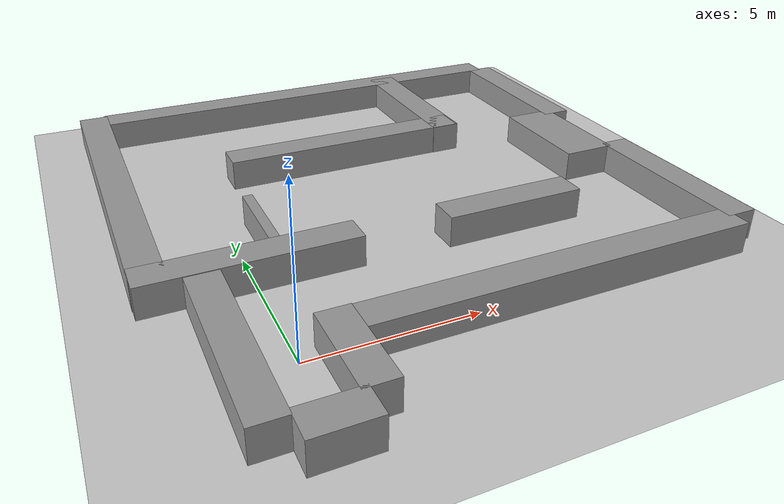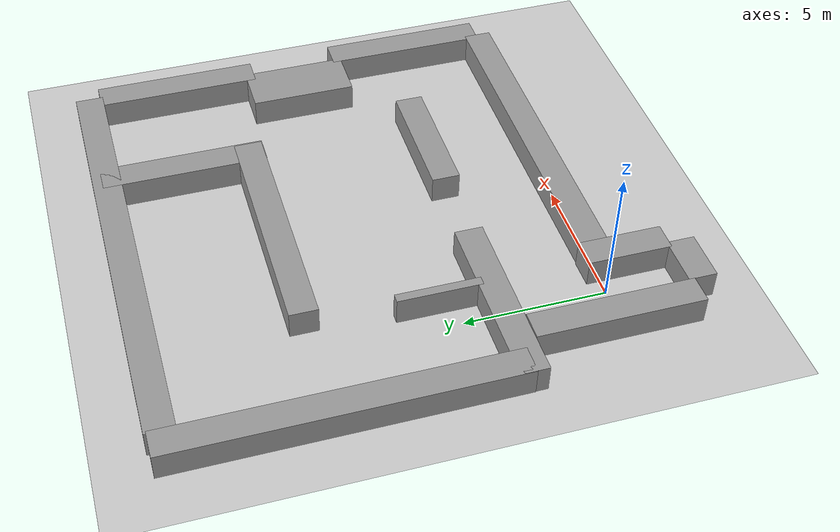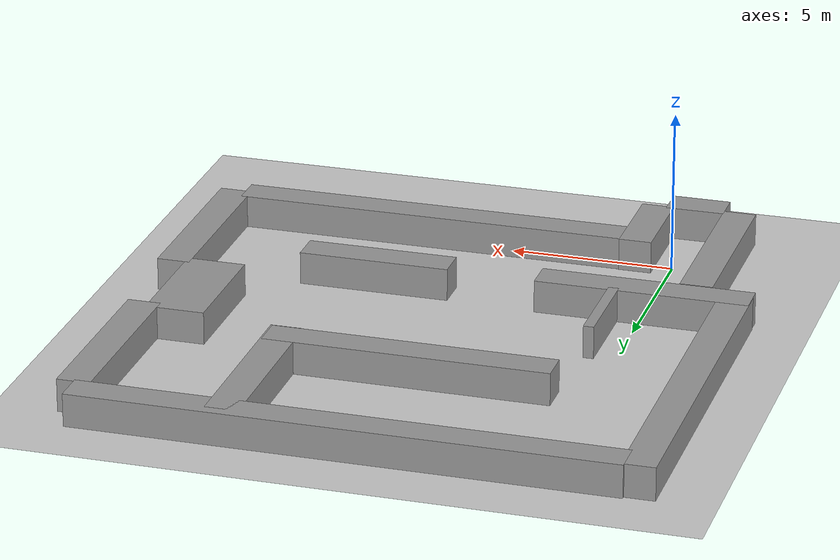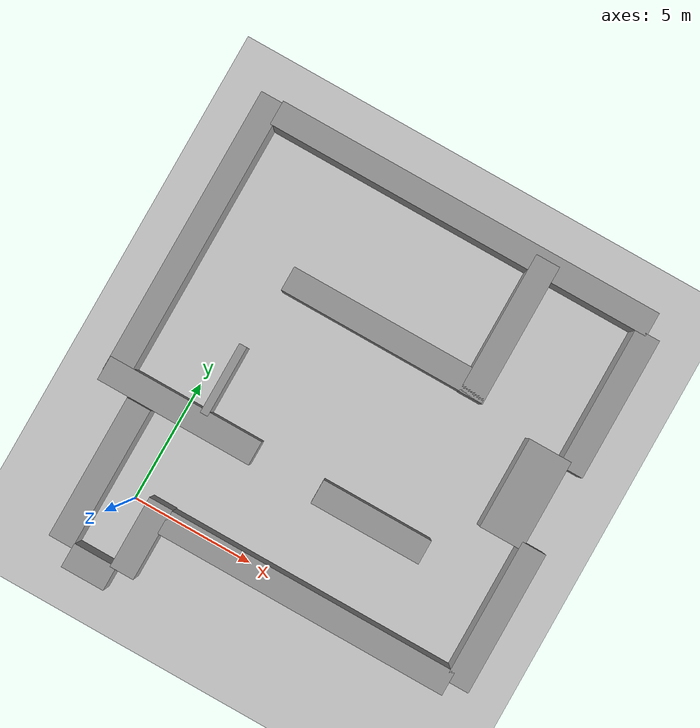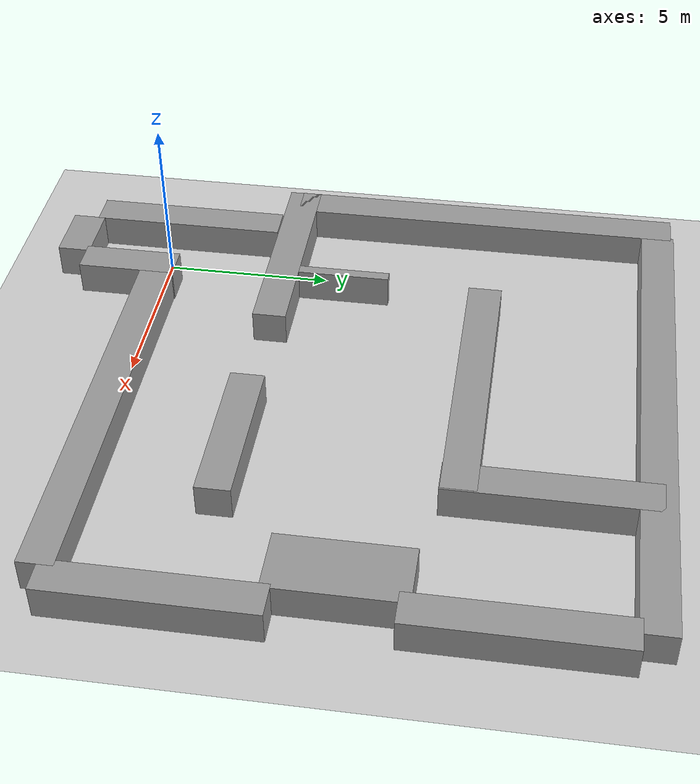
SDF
<sdf version="1.7">
 <world name="default">
  <light name="sun" type="directional">
   <pose>0 0 10 0 -0 0</pose>
   <diffuse>0.8 0.8 0.8 1</diffuse>
   <specular>0.2 0.2 0.2 1</specular>
   <attenuation>
    <range>1000</range>
    <constant>0.9</constant>
    <linear>0.01</linear>
    <quadratic>0.001</quadratic>
   </attenuation>
   <direction>-0.5 0.1 -0.9</direction>
   <spot><inner_angle>0</inner_angle><outer_angle>0</outer_angle><falloff>0</falloff></spot>
  </light>
  <model name="ground_plane">
   <static>1</static>
   <link name="link">
    <collision name="collision">
     <geometry><plane><normal>0 0 1</normal><size>100 100</size></plane></geometry>
     <surface>
      <contact><collide_bitmask>65535</collide_bitmask></contact>
      <friction><ode><mu>100</mu><mu2>50</mu2></ode></friction>
     </surface>
    </collision>
    <visual name="visual">
     <cast_shadows>0</cast_shadows>
     <geometry><plane><normal>0 0 1</normal><size>100 100</size></plane></geometry>
     <material>
      <script><uri>file://media/materials/scripts/gazebo.material</uri><name>Gazebo/Grey</name></script>
     </material>
    </visual>
   </link>
  </model>
  <gravity>0 0 -9.8</gravity>
  <magnetic_field>6e-06 2.3e-05 -4.2e-05</magnetic_field>
  <atmosphere type="adiabatic"/>
  <physics type="ode">
   <max_step_size>0.001</max_step_size>
   <real_time_factor>1</real_time_factor>
   <real_time_update_rate>1000</real_time_update_rate>
  </physics>
  <scene><ambient>0.4 0.4 0.4 1</ambient><background>0.7 0.7 0.7 1</background><shadows>1</shadows></scene>
  <spherical_coordinates>
   <surface_model>EARTH_WGS84</surface_model>
   <latitude_deg>0</latitude_deg>
   <longitude_deg>0</longitude_deg>
   <elevation>0</elevation>
   <heading_deg>0</heading_deg>
  </spherical_coordinates>
  <model name="maze3">
   <link name="link">
    <inertial>
     <mass>5.8822</mass>
     <inertia><ixx>17.4506</ixx><ixy>0</ixy><ixz>0</ixz><iyy>0.980367</iyy><iyz>0</iyz><izz>17.4506</izz></inertia>
    </inertial>
    <pose>0 1.33544 -0 0 -0 0</pose>
    <visual name="visual">
     <geometry><box><size>1 5.88219 1</size></box></geometry>
     <material>
      <script><name>Gazebo/Grey</name><uri>file://media/materials/scripts/gazebo.material</uri></script>
      <shader type="pixel"/>
     </material>
    </visual>
    <collision name="collision">
     <geometry><box><size>1 5.88219 1</size></box></geometry>
     <surface>
      <friction>
       <ode><mu>1</mu><mu2>1</mu2><fdir1>0 0 0</fdir1><slip1>0</slip1><slip2>0</slip2></ode>
       <torsional>
        <coefficient>1</coefficient>
        <patch_radius>0</patch_radius>
        <surface_radius>0</surface_radius>
        <use_patch_radius>1</use_patch_radius>
        <ode><slip>0</slip></ode>
       </torsional>
      </friction>
      <bounce><restitution_coefficient>0</restitution_coefficient><threshold>1e+06</threshold></bounce>
      <contact>
       <collide_without_contact>0</collide_without_contact>
       <collide_without_contact_bitmask>1</collide_without_contact_bitmask>
       <collide_bitmask>1</collide_bitmask>
       <ode>
        <soft_cfm>0</soft_cfm>
        <soft_erp>0.2</soft_erp>
        <kp>1e+13</kp>
        <kd>1</kd>
        <max_vel>0.01</max_vel>
        <min_depth>0</min_depth>
       </ode>
       <bullet>
        <split_impulse>1</split_impulse>
        <split_impulse_penetration_threshold>-0.01</split_impulse_penetration_threshold>
        <soft_cfm>0</soft_cfm>
        <soft_erp>0.2</soft_erp>
        <kp>1e+13</kp>
        <kd>1</kd>
       </bullet>
      </contact>
     </surface>
    </collision>
   </link>
   <link name="link_clone">
    <inertial>
     <mass>1.79526</mass>
     <inertia>
      <ixx>0.631773</ixx>
      <ixy>0</ixy>
      <ixz>0</ixz>
      <iyy>0.29921</iyy>
      <iyz>0</iyz>
      <izz>0.631773</izz>
     </inertia>
    </inertial>
    <pose>1.38106 -1.89898 0 0 -0 1.5708</pose>
    <visual name="visual">
     <geometry><box><size>1 1.79526 1</size></box></geometry>
     <material>
      <script><name>Gazebo/Grey</name><uri>file://media/materials/scripts/gazebo.material</uri></script>
      <shader type="pixel"/>
     </material>
    </visual>
    <collision name="collision">
     <geometry><box><size>1 1.79526 1</size></box></geometry>
     <surface>
      <friction>
       <ode><mu>1</mu><mu2>1</mu2><fdir1>0 0 0</fdir1><slip1>0</slip1><slip2>0</slip2></ode>
       <torsional>
        <coefficient>1</coefficient>
        <patch_radius>0</patch_radius>
        <surface_radius>0</surface_radius>
        <use_patch_radius>1</use_patch_radius>
        <ode><slip>0</slip></ode>
       </torsional>
      </friction>
      <bounce><restitution_coefficient>0</restitution_coefficient><threshold>1e+06</threshold></bounce>
      <contact>
       <collide_without_contact>0</collide_without_contact>
       <collide_without_contact_bitmask>1</collide_without_contact_bitmask>
       <collide_bitmask>1</collide_bitmask>
       <ode>
        <soft_cfm>0</soft_cfm>
        <soft_erp>0.2</soft_erp>
        <kp>1e+13</kp>
        <kd>1</kd>
        <max_vel>0.01</max_vel>
        <min_depth>0</min_depth>
       </ode>
       <bullet>
        <split_impulse>1</split_impulse>
        <split_impulse_penetration_threshold>-0.01</split_impulse_penetration_threshold>
        <soft_cfm>0</soft_cfm>
        <soft_erp>0.2</soft_erp>
        <kp>1e+13</kp>
        <kd>1</kd>
       </bullet>
      </contact>
     </surface>
    </collision>
   </link>
   <link name="link_clone_0">
    <inertial>
     <mass>2.96212</mass>
     <inertia><ixx>2.41268</ixx><ixy>0</ixy><ixz>0</ixz><iyy>0.493687</iyy><iyz>0</iyz><izz>2.41268</izz></inertia>
    </inertial>
    <pose>2.55538 -0.018272 0 0 -0 0</pose>
    <visual name="visual">
     <geometry><box><size>1 2.96211 1</size></box></geometry>
     <material>
      <script><name>Gazebo/Grey</name><uri>file://media/materials/scripts/gazebo.material</uri></script>
      <shader type="pixel"/>
     </material>
    </visual>
    <collision name="collision">
     <geometry><box><size>1 2.96211 1</size></box></geometry>
     <surface>
      <friction>
       <ode><mu>1</mu><mu2>1</mu2><fdir1>0 0 0</fdir1><slip1>0</slip1><slip2>0</slip2></ode>
       <torsional>
        <coefficient>1</coefficient>
        <patch_radius>0</patch_radius>
        <surface_radius>0</surface_radius>
        <use_patch_radius>1</use_patch_radius>
        <ode><slip>0</slip></ode>
       </torsional>
      </friction>
      <bounce><restitution_coefficient>0</restitution_coefficient><threshold>1e+06</threshold></bounce>
      <contact>
       <collide_without_contact>0</collide_without_contact>
       <collide_without_contact_bitmask>1</collide_without_contact_bitmask>
       <collide_bitmask>1</collide_bitmask>
       <ode>
        <soft_cfm>0</soft_cfm>
        <soft_erp>0.2</soft_erp>
        <kp>1e+13</kp>
        <kd>1</kd>
        <max_vel>0.01</max_vel>
        <min_depth>0</min_depth>
       </ode>
       <bullet>
        <split_impulse>1</split_impulse>
        <split_impulse_penetration_threshold>-0.01</split_impulse_penetration_threshold>
        <soft_cfm>0</soft_cfm>
        <soft_erp>0.2</soft_erp>
        <kp>1e+13</kp>
        <kd>1</kd>
       </bullet>
      </contact>
     </surface>
    </collision>
   </link>
   <link name="link_clone_0_clone">
    <inertial>
     <mass>12.1451</mass>
     <inertia><ixx>150.296</ixx><ixy>0</ixy><ixz>0</ixz><iyy>2.02418</iyy><iyz>0</iyz><izz>150.296</izz></inertia>
    </inertial>
    <pose>9.06508 0.93408 0 0 -0 1.5708</pose>
    <visual name="visual">
     <geometry><box><size>1 12.145 1</size></box></geometry>
     <material>
      <script><name>Gazebo/Grey</name><uri>file://media/materials/scripts/gazebo.material</uri></script>
      <shader type="pixel"/>
     </material>
    </visual>
    <collision name="collision">
     <geometry><box><size>1 12.145 1</size></box></geometry>
     <surface>
      <friction>
       <ode><mu>1</mu><mu2>1</mu2><fdir1>0 0 0</fdir1><slip1>0</slip1><slip2>0</slip2></ode>
       <torsional>
        <coefficient>1</coefficient>
        <patch_radius>0</patch_radius>
        <surface_radius>0</surface_radius>
        <use_patch_radius>1</use_patch_radius>
        <ode><slip>0</slip></ode>
       </torsional>
      </friction>
      <bounce><restitution_coefficient>0</restitution_coefficient><threshold>1e+06</threshold></bounce>
      <contact>
       <collide_without_contact>0</collide_without_contact>
       <collide_without_contact_bitmask>1</collide_without_contact_bitmask>
       <collide_bitmask>1</collide_bitmask>
       <ode>
        <soft_cfm>0</soft_cfm>
        <soft_erp>0.2</soft_erp>
        <kp>1e+13</kp>
        <kd>1</kd>
        <max_vel>0.01</max_vel>
        <min_depth>0</min_depth>
       </ode>
       <bullet>
        <split_impulse>1</split_impulse>
        <split_impulse_penetration_threshold>-0.01</split_impulse_penetration_threshold>
        <soft_cfm>0</soft_cfm>
        <soft_erp>0.2</soft_erp>
        <kp>1e+13</kp>
        <kd>1</kd>
       </bullet>
      </contact>
     </surface>
    </collision>
   </link>
   <link name="link_clone_0_clone_0">
    <inertial>
     <mass>0.943351</mass>
     <inertia>
      <ixx>0.768367</ixx>
      <ixy>0</ixy>
      <ixz>0</ixz>
      <iyy>0.0865848</iyy>
      <iyz>0</iyz>
      <izz>0.697727</izz>
     </inertia>
    </inertial>
    <pose>2.29355 6.61381 0 -0 -0 -0</pose>
    <visual name="visual">
     <geometry><box><size>0.318452 2.96211 1</size></box></geometry>
     <material>
      <script><name>Gazebo/Grey</name><uri>file://media/materials/scripts/gazebo.material</uri></script>
      <shader type="pixel"/>
     </material>
    </visual>
    <collision name="collision">
     <geometry><box><size>0.318452 2.96211 1</size></box></geometry>
     <surface>
      <friction>
       <ode><mu>1</mu><mu2>1</mu2><fdir1>0 0 0</fdir1><slip1>0</slip1><slip2>0</slip2></ode>
       <torsional>
        <coefficient>1</coefficient>
        <patch_radius>0</patch_radius>
        <surface_radius>0</surface_radius>
        <use_patch_radius>1</use_patch_radius>
        <ode><slip>0</slip></ode>
       </torsional>
      </friction>
      <bounce><restitution_coefficient>0</restitution_coefficient><threshold>1e+06</threshold></bounce>
      <contact>
       <collide_without_contact>0</collide_without_contact>
       <collide_without_contact_bitmask>1</collide_without_contact_bitmask>
       <collide_bitmask>1</collide_bitmask>
       <ode>
        <soft_cfm>0</soft_cfm>
        <soft_erp>0.2</soft_erp>
        <kp>1e+13</kp>
        <kd>1</kd>
        <max_vel>0.01</max_vel>
        <min_depth>0</min_depth>
       </ode>
       <bullet>
        <split_impulse>1</split_impulse>
        <split_impulse_penetration_threshold>-0.01</split_impulse_penetration_threshold>
        <soft_cfm>0</soft_cfm>
        <soft_erp>0.2</soft_erp>
        <kp>1e+13</kp>
        <kd>1</kd>
       </bullet>
      </contact>
     </surface>
    </collision>
   </link>
   <link name="link_clone_0_clone_clone">
    <inertial>
     <mass>6.48256</mass>
     <inertia><ixx>23.2417</ixx><ixy>0</ixy><ixz>0</ixz><iyy>1.08043</iyy><iyz>0</iyz><izz>23.2417</izz></inertia>
    </inertial>
    <pose>1.43611 4.81203 0 0 -0 1.5708</pose>
    <visual name="visual">
     <geometry><box><size>1 6.48253 1</size></box></geometry>
     <material>
      <script><name>Gazebo/Grey</name><uri>file://media/materials/scripts/gazebo.material</uri></script>
      <shader type="pixel"/>
     </material>
    </visual>
    <collision name="collision">
     <geometry><box><size>1 6.48253 1</size></box></geometry>
     <surface>
      <friction>
       <ode><mu>1</mu><mu2>1</mu2><fdir1>0 0 0</fdir1><slip1>0</slip1><slip2>0</slip2></ode>
       <torsional>
        <coefficient>1</coefficient>
        <patch_radius>0</patch_radius>
        <surface_radius>0</surface_radius>
        <use_patch_radius>1</use_patch_radius>
        <ode><slip>0</slip></ode>
       </torsional>
      </friction>
      <bounce><restitution_coefficient>0</restitution_coefficient><threshold>1e+06</threshold></bounce>
      <contact>
       <collide_without_contact>0</collide_without_contact>
       <collide_without_contact_bitmask>1</collide_without_contact_bitmask>
       <collide_bitmask>1</collide_bitmask>
       <ode>
        <soft_cfm>0</soft_cfm>
        <soft_erp>0.2</soft_erp>
        <kp>1e+13</kp>
        <kd>1</kd>
        <max_vel>0.01</max_vel>
        <min_depth>0</min_depth>
       </ode>
       <bullet>
        <split_impulse>1</split_impulse>
        <split_impulse_penetration_threshold>-0.01</split_impulse_penetration_threshold>
        <soft_cfm>0</soft_cfm>
        <soft_erp>0.2</soft_erp>
        <kp>1e+13</kp>
        <kd>1</kd>
       </bullet>
      </contact>
     </surface>
    </collision>
   </link>
   <link name="link_clone_0_clone_clone_0">
    <inertial>
     <mass>16.1446</mass>
     <inertia><ixx>352.011</ixx><ixy>0</ixy><ixz>0</ixz><iyy>2.69077</iyy><iyz>0</iyz><izz>352.011</izz></inertia>
    </inertial>
    <pose>7.14079 16.2925 0 0 -0 1.5708</pose>
    <visual name="visual">
     <geometry><box><size>1 16.1445 1</size></box></geometry>
     <material>
      <script><name>Gazebo/Grey</name><uri>file://media/materials/scripts/gazebo.material</uri></script>
      <shader type="pixel"/>
     </material>
    </visual>
    <collision name="collision">
     <geometry><box><size>1 16.1445 1</size></box></geometry>
     <surface>
      <friction>
       <ode><mu>1</mu><mu2>1</mu2><fdir1>0 0 0</fdir1><slip1>0</slip1><slip2>0</slip2></ode>
       <torsional>
        <coefficient>1</coefficient>
        <patch_radius>0</patch_radius>
        <surface_radius>0</surface_radius>
        <use_patch_radius>1</use_patch_radius>
        <ode><slip>0</slip></ode>
       </torsional>
      </friction>
      <bounce><restitution_coefficient>0</restitution_coefficient><threshold>1e+06</threshold></bounce>
      <contact>
       <collide_without_contact>0</collide_without_contact>
       <collide_without_contact_bitmask>1</collide_without_contact_bitmask>
       <collide_bitmask>1</collide_bitmask>
       <ode>
        <soft_cfm>0</soft_cfm>
        <soft_erp>0.2</soft_erp>
        <kp>1e+13</kp>
        <kd>1</kd>
        <max_vel>0.01</max_vel>
        <min_depth>0</min_depth>
       </ode>
       <bullet>
        <split_impulse>1</split_impulse>
        <split_impulse_penetration_threshold>-0.01</split_impulse_penetration_threshold>
        <soft_cfm>0</soft_cfm>
        <soft_erp>0.2</soft_erp>
        <kp>1e+13</kp>
        <kd>1</kd>
       </bullet>
      </contact>
     </surface>
    </collision>
   </link>
   <link name="link_clone_0_clone_clone_clone">
    <inertial>
     <mass>4.60429</mass>
     <inertia><ixx>8.51767</ixx><ixy>0</ixy><ixz>0</ixz><iyy>0.767381</iyy><iyz>0</iyz><izz>8.51767</izz></inertia>
    </inertial>
    <pose>9.68647 4.7285 0 0 -0 1.5708</pose>
    <visual name="visual">
     <geometry><box><size>1 4.60427 1</size></box></geometry>
     <material>
      <script><name>Gazebo/Grey</name><uri>file://media/materials/scripts/gazebo.material</uri></script>
      <shader type="pixel"/>
     </material>
    </visual>
    <collision name="collision">
     <geometry><box><size>1 4.60427 1</size></box></geometry>
     <surface>
      <friction>
       <ode><mu>1</mu><mu2>1</mu2><fdir1>0 0 0</fdir1><slip1>0</slip1><slip2>0</slip2></ode>
       <torsional>
        <coefficient>1</coefficient>
        <patch_radius>0</patch_radius>
        <surface_radius>0</surface_radius>
        <use_patch_radius>1</use_patch_radius>
        <ode><slip>0</slip></ode>
       </torsional>
      </friction>
      <bounce><restitution_coefficient>0</restitution_coefficient><threshold>1e+06</threshold></bounce>
      <contact>
       <collide_without_contact>0</collide_without_contact>
       <collide_without_contact_bitmask>1</collide_without_contact_bitmask>
       <collide_bitmask>1</collide_bitmask>
       <ode>
        <soft_cfm>0</soft_cfm>
        <soft_erp>0.2</soft_erp>
        <kp>1e+13</kp>
        <kd>1</kd>
        <max_vel>0.01</max_vel>
        <min_depth>0</min_depth>
       </ode>
       <bullet>
        <split_impulse>1</split_impulse>
        <split_impulse_penetration_threshold>-0.01</split_impulse_penetration_threshold>
        <soft_cfm>0</soft_cfm>
        <soft_erp>0.2</soft_erp>
        <kp>1e+13</kp>
        <kd>1</kd>
       </bullet>
      </contact>
     </surface>
    </collision>
   </link>
   <link name="link_clone_0_clone_clone_clone_0">
    <inertial>
     <mass>8.59022</mass>
     <inertia><ixx>53.5393</ixx><ixy>0</ixy><ixz>0</ixz><iyy>1.4317</iyy><iyz>0</iyz><izz>53.5393</izz></inertia>
    </inertial>
    <pose>6.79432 11.0926 0 0 -0 1.5708</pose>
    <visual name="visual">
     <geometry><box><size>1 8.59017 1</size></box></geometry>
     <material>
      <script><name>Gazebo/Grey</name><uri>file://media/materials/scripts/gazebo.material</uri></script>
      <shader type="pixel"/>
     </material>
    </visual>
    <collision name="collision">
     <geometry><box><size>1 8.59017 1</size></box></geometry>
     <surface>
      <friction>
       <ode><mu>1</mu><mu2>1</mu2><fdir1>0 0 0</fdir1><slip1>0</slip1><slip2>0</slip2></ode>
       <torsional>
        <coefficient>1</coefficient>
        <patch_radius>0</patch_radius>
        <surface_radius>0</surface_radius>
        <use_patch_radius>1</use_patch_radius>
        <ode><slip>0</slip></ode>
       </torsional>
      </friction>
      <bounce><restitution_coefficient>0</restitution_coefficient><threshold>1e+06</threshold></bounce>
      <contact>
       <collide_without_contact>0</collide_without_contact>
       <collide_without_contact_bitmask>1</collide_without_contact_bitmask>
       <collide_bitmask>1</collide_bitmask>
       <ode>
        <soft_cfm>0</soft_cfm>
        <soft_erp>0.2</soft_erp>
        <kp>1e+13</kp>
        <kd>1</kd>
        <max_vel>0.01</max_vel>
        <min_depth>0</min_depth>
       </ode>
       <bullet>
        <split_impulse>1</split_impulse>
        <split_impulse_penetration_threshold>-0.01</split_impulse_penetration_threshold>
        <soft_cfm>0</soft_cfm>
        <soft_erp>0.2</soft_erp>
        <kp>1e+13</kp>
        <kd>1</kd>
       </bullet>
      </contact>
     </surface>
    </collision>
   </link>
   <link name="link_clone_1">
    <inertial>
     <mass>5.8822</mass>
     <inertia><ixx>17.4506</ixx><ixy>0</ixy><ixz>0</ixz><iyy>0.980367</iyy><iyz>0</iyz><izz>17.4506</izz></inertia>
    </inertial>
    <pose>15.4481 3.92931 0 -0 -0 -0</pose>
    <visual name="visual">
     <geometry><box><size>1 5.88219 1</size></box></geometry>
     <material>
      <script><name>Gazebo/Grey</name><uri>file://media/materials/scripts/gazebo.material</uri></script>
      <shader type="pixel"/>
     </material>
    </visual>
    <collision name="collision">
     <geometry><box><size>1 5.88219 1</size></box></geometry>
     <surface>
      <friction>
       <ode><mu>1</mu><mu2>1</mu2><fdir1>0 0 0</fdir1><slip1>0</slip1><slip2>0</slip2></ode>
       <torsional>
        <coefficient>1</coefficient>
        <patch_radius>0</patch_radius>
        <surface_radius>0</surface_radius>
        <use_patch_radius>1</use_patch_radius>
        <ode><slip>0</slip></ode>
       </torsional>
      </friction>
      <bounce><restitution_coefficient>0</restitution_coefficient><threshold>1e+06</threshold></bounce>
      <contact>
       <collide_without_contact>0</collide_without_contact>
       <collide_without_contact_bitmask>1</collide_without_contact_bitmask>
       <collide_bitmask>1</collide_bitmask>
       <ode>
        <soft_cfm>0</soft_cfm>
        <soft_erp>0.2</soft_erp>
        <kp>1e+13</kp>
        <kd>1</kd>
        <max_vel>0.01</max_vel>
        <min_depth>0</min_depth>
       </ode>
       <bullet>
        <split_impulse>1</split_impulse>
        <split_impulse_penetration_threshold>-0.01</split_impulse_penetration_threshold>
        <soft_cfm>0</soft_cfm>
        <soft_erp>0.2</soft_erp>
        <kp>1e+13</kp>
        <kd>1</kd>
       </bullet>
      </contact>
     </surface>
    </collision>
   </link>
   <link name="link_clone_1_clone">
    <inertial>
     <mass>5.8822</mass>
     <inertia><ixx>17.4506</ixx><ixy>0</ixy><ixz>0</ixz><iyy>0.980367</iyy><iyz>0</iyz><izz>17.4506</izz></inertia>
    </inertial>
    <pose>15.2278 12.9539 0 -0 -0 -0</pose>
    <visual name="visual">
     <geometry><box><size>1 5.88219 1</size></box></geometry>
     <material>
      <script><name>Gazebo/Grey</name><uri>file://media/materials/scripts/gazebo.material</uri></script>
      <shader type="pixel"/>
     </material>
    </visual>
    <collision name="collision">
     <geometry><box><size>1 5.88219 1</size></box></geometry>
     <surface>
      <friction>
       <ode><mu>1</mu><mu2>1</mu2><fdir1>0 0 0</fdir1><slip1>0</slip1><slip2>0</slip2></ode>
       <torsional>
        <coefficient>1</coefficient>
        <patch_radius>0</patch_radius>
        <surface_radius>0</surface_radius>
        <use_patch_radius>1</use_patch_radius>
        <ode><slip>0</slip></ode>
       </torsional>
      </friction>
      <bounce><restitution_coefficient>0</restitution_coefficient><threshold>1e+06</threshold></bounce>
      <contact>
       <collide_without_contact>0</collide_without_contact>
       <collide_without_contact_bitmask>1</collide_without_contact_bitmask>
       <collide_bitmask>1</collide_bitmask>
       <ode>
        <soft_cfm>0</soft_cfm>
        <soft_erp>0.2</soft_erp>
        <kp>1e+13</kp>
        <kd>1</kd>
        <max_vel>0.01</max_vel>
        <min_depth>0</min_depth>
       </ode>
       <bullet>
        <split_impulse>1</split_impulse>
        <split_impulse_penetration_threshold>-0.01</split_impulse_penetration_threshold>
        <soft_cfm>0</soft_cfm>
        <soft_erp>0.2</soft_erp>
        <kp>1e+13</kp>
        <kd>1</kd>
       </bullet>
      </contact>
     </surface>
    </collision>
   </link>
   <link name="link_clone_1_clone_0">
    <inertial>
     <mass>11.9708</mass>
     <inertia><ixx>143.947</ixx><ixy>0</ixy><ixz>0</ixz><iyy>1.99513</iyy><iyz>0</iyz><izz>143.947</izz></inertia>
    </inertial>
    <pose>-1.32234 10.7211 -0 -0 -0 -0</pose>
    <visual name="visual">
     <geometry><box><size>1 11.9707 1</size></box></geometry>
     <material>
      <script><name>Gazebo/Grey</name><uri>file://media/materials/scripts/gazebo.material</uri></script>
      <shader type="pixel"/>
     </material>
    </visual>
    <collision name="collision">
     <geometry><box><size>1 11.9707 1</size></box></geometry>
     <surface>
      <friction>
       <ode><mu>1</mu><mu2>1</mu2><fdir1>0 0 0</fdir1><slip1>0</slip1><slip2>0</slip2></ode>
       <torsional>
        <coefficient>1</coefficient>
        <patch_radius>0</patch_radius>
        <surface_radius>0</surface_radius>
        <use_patch_radius>1</use_patch_radius>
        <ode><slip>0</slip></ode>
       </torsional>
      </friction>
      <bounce><restitution_coefficient>0</restitution_coefficient><threshold>1e+06</threshold></bounce>
      <contact>
       <collide_without_contact>0</collide_without_contact>
       <collide_without_contact_bitmask>1</collide_without_contact_bitmask>
       <collide_bitmask>1</collide_bitmask>
       <ode>
        <soft_cfm>0</soft_cfm>
        <soft_erp>0.2</soft_erp>
        <kp>1e+13</kp>
        <kd>1</kd>
        <max_vel>0.01</max_vel>
        <min_depth>0</min_depth>
       </ode>
       <bullet>
        <split_impulse>1</split_impulse>
        <split_impulse_penetration_threshold>-0.01</split_impulse_penetration_threshold>
        <soft_cfm>0</soft_cfm>
        <soft_erp>0.2</soft_erp>
        <kp>1e+13</kp>
        <kd>1</kd>
       </bullet>
      </contact>
     </surface>
    </collision>
   </link>
   <link name="link_clone_1_clone_clone">
    <inertial>
     <mass>5.8822</mass>
     <inertia><ixx>17.4506</ixx><ixy>0</ixy><ixz>0</ixz><iyy>0.980367</iyy><iyz>0</iyz><izz>17.4506</izz></inertia>
    </inertial>
    <pose>10.6361 13.5167 0 -0 -0 -0</pose>
    <visual name="visual">
     <geometry><box><size>1 5.88219 1</size></box></geometry>
     <material>
      <script><name>Gazebo/Grey</name><uri>file://media/materials/scripts/gazebo.material</uri></script>
      <shader type="pixel"/>
     </material>
    </visual>
    <collision name="collision">
     <geometry><box><size>1 5.88219 1</size></box></geometry>
     <surface>
      <friction>
       <ode><mu>1</mu><mu2>1</mu2><fdir1>0 0 0</fdir1><slip1>0</slip1><slip2>0</slip2></ode>
       <torsional>
        <coefficient>1</coefficient>
        <patch_radius>0</patch_radius>
        <surface_radius>0</surface_radius>
        <use_patch_radius>1</use_patch_radius>
        <ode><slip>0</slip></ode>
       </torsional>
      </friction>
      <bounce><restitution_coefficient>0</restitution_coefficient><threshold>1e+06</threshold></bounce>
      <contact>
       <collide_without_contact>0</collide_without_contact>
       <collide_without_contact_bitmask>1</collide_without_contact_bitmask>
       <collide_bitmask>1</collide_bitmask>
       <ode>
        <soft_cfm>0</soft_cfm>
        <soft_erp>0.2</soft_erp>
        <kp>1e+13</kp>
        <kd>1</kd>
        <max_vel>0.01</max_vel>
        <min_depth>0</min_depth>
       </ode>
       <bullet>
        <split_impulse>1</split_impulse>
        <split_impulse_penetration_threshold>-0.01</split_impulse_penetration_threshold>
        <soft_cfm>0</soft_cfm>
        <soft_erp>0.2</soft_erp>
        <kp>1e+13</kp>
        <kd>1</kd>
       </bullet>
      </contact>
     </surface>
    </collision>
   </link>
   <link name="link_clone_clone">
    <inertial>
     <mass>6.7575</mass>
     <inertia><ixx>2.37805</ixx><ixy>0</ixy><ixz>0</ixz><iyy>8.54162</iyy><iyz>0</iyz><izz>9.79343</izz></inertia>
    </inertial>
    <pose>14.1833 8.45431 0 0 -0 1.5708</pose>
    <visual name="visual">
     <geometry><box><size>3.76407 1.79526 1</size></box></geometry>
     <material>
      <script><name>Gazebo/Grey</name><uri>file://media/materials/scripts/gazebo.material</uri></script>
      <shader type="pixel"/>
     </material>
    </visual>
    <collision name="collision">
     <geometry><box><size>3.76407 1.79526 1</size></box></geometry>
     <surface>
      <friction>
       <ode><mu>1</mu><mu2>1</mu2><fdir1>0 0 0</fdir1><slip1>0</slip1><slip2>0</slip2></ode>
       <torsional>
        <coefficient>1</coefficient>
        <patch_radius>0</patch_radius>
        <surface_radius>0</surface_radius>
        <use_patch_radius>1</use_patch_radius>
        <ode><slip>0</slip></ode>
       </torsional>
      </friction>
      <bounce><restitution_coefficient>0</restitution_coefficient><threshold>1e+06</threshold></bounce>
      <contact>
       <collide_without_contact>0</collide_without_contact>
       <collide_without_contact_bitmask>1</collide_without_contact_bitmask>
       <collide_bitmask>1</collide_bitmask>
       <ode>
        <soft_cfm>0</soft_cfm>
        <soft_erp>0.2</soft_erp>
        <kp>1e+13</kp>
        <kd>1</kd>
        <max_vel>0.01</max_vel>
        <min_depth>0</min_depth>
       </ode>
       <bullet>
        <split_impulse>1</split_impulse>
        <split_impulse_penetration_threshold>-0.01</split_impulse_penetration_threshold>
        <soft_cfm>0</soft_cfm>
        <soft_erp>0.2</soft_erp>
        <kp>1e+13</kp>
        <kd>1</kd>
       </bullet>
      </contact>
     </surface>
    </collision>
   </link>
   <static>0</static>
   <pose>-1.5 -1 0.5 0 -0 0</pose>
  </model>
 </world>
</sdf>
